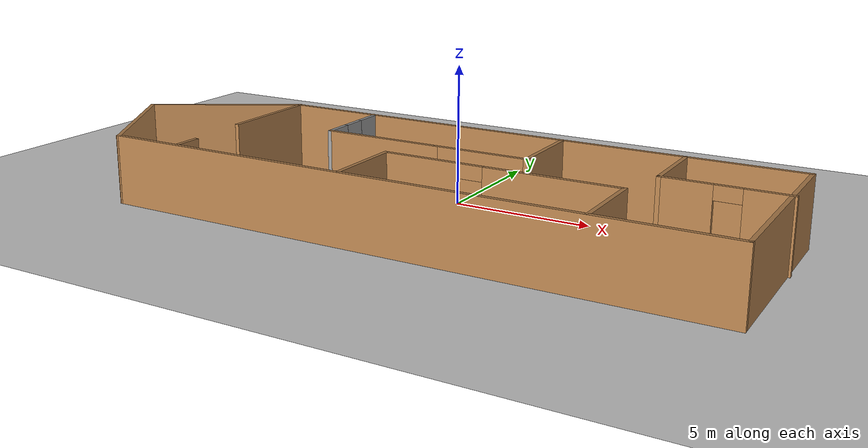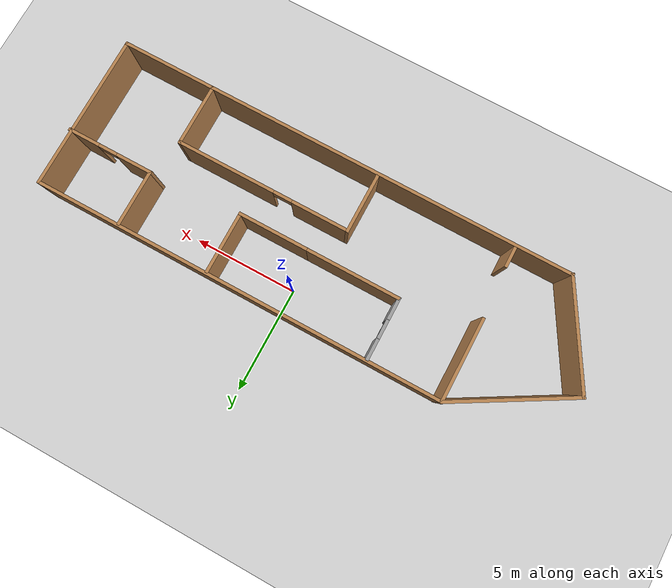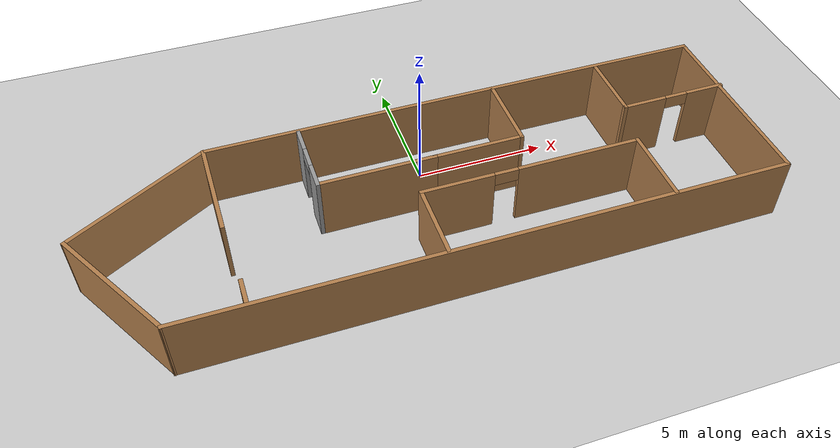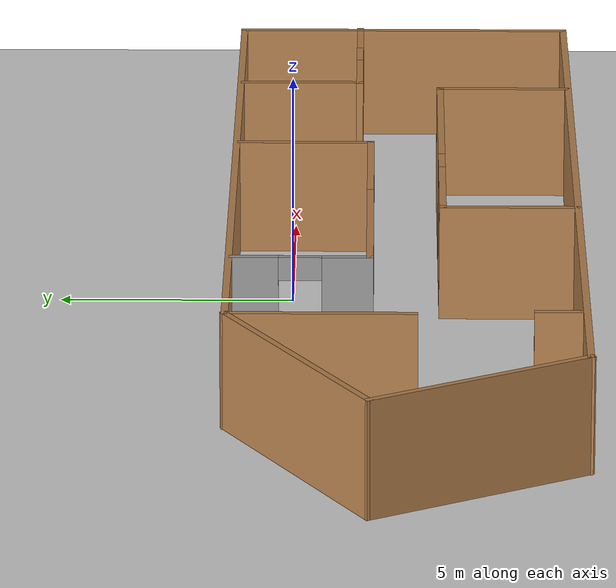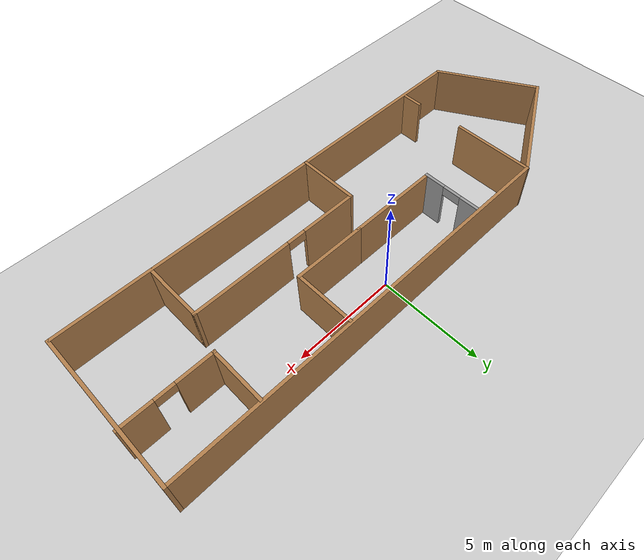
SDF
<sdf version="1.7">
 <world name="default">
  <light name="sun" type="directional">
   <pose>0 0 10 0 -0 0</pose>
   <diffuse>0.8 0.8 0.8 1</diffuse>
   <specular>0.2 0.2 0.2 1</specular>
   <attenuation>
    <range>1000</range>
    <constant>0.9</constant>
    <linear>0.01</linear>
    <quadratic>0.001</quadratic>
   </attenuation>
   <direction>-0.5 0.1 -0.9</direction>
   <spot><inner_angle>0</inner_angle><outer_angle>0</outer_angle><falloff>0</falloff></spot>
  </light>
  <model name="ground_plane">
   <static>1</static>
   <link name="link">
    <collision name="collision">
     <geometry><plane><normal>0 0 1</normal><size>100 100</size></plane></geometry>
     <surface>
      <contact><collide_bitmask>65535</collide_bitmask></contact>
      <friction><ode><mu>100</mu><mu2>50</mu2></ode></friction>
     </surface>
    </collision>
    <visual name="visual">
     <cast_shadows>0</cast_shadows>
     <geometry><plane><normal>0 0 1</normal><size>100 100</size></plane></geometry>
     <material>
      <script><uri>file://media/materials/scripts/gazebo.material</uri><name>Gazebo/Grey</name></script>
     </material>
    </visual>
   </link>
  </model>
  <gravity>0 0 -9.8</gravity>
  <magnetic_field>6e-06 2.3e-05 -4.2e-05</magnetic_field>
  <atmosphere type="adiabatic"/>
  <physics type="ode">
   <max_step_size>0.001</max_step_size>
   <real_time_factor>1</real_time_factor>
   <real_time_update_rate>1000</real_time_update_rate>
  </physics>
  <scene><ambient>0.4 0.4 0.4 1</ambient><background>0.7 0.7 0.7 1</background><shadows>1</shadows></scene>
  <spherical_coordinates>
   <surface_model>EARTH_WGS84</surface_model>
   <latitude_deg>0</latitude_deg>
   <longitude_deg>0</longitude_deg>
   <elevation>0</elevation>
   <heading_deg>0</heading_deg>
  </spherical_coordinates>
  <model name="Untitled">
   <pose>-0.517626 -2.38887 0 0 -0 0</pose>
   <link name="Wall_0">
    <collision name="Wall_0_Collision">
     <geometry><box><size>19.75 0.15 2.5</size></box></geometry>
     <pose>0 0 1.25 0 -0 0</pose>
    </collision>
    <visual name="Wall_0_Visual">
     <pose>0 0 1.25 0 -0 0</pose>
     <geometry><box><size>19.75 0.15 2.5</size></box></geometry>
     <material>
      <script><uri>file://media/materials/scripts/gazebo.material</uri><name>Gazebo/Wood</name></script>
      <ambient>1 1 1 1</ambient>
     </material>
     <meta><layer>0</layer></meta>
    </visual>
    <pose>2.5006 3.67496 0 0 -0 0</pose>
   </link>
   <link name="Wall_1">
    <collision name="Wall_1_Collision">
     <geometry><box><size>7.5 0.15 2.5</size></box></geometry>
     <pose>0 0 1.25 0 -0 0</pose>
    </collision>
    <visual name="Wall_1_Visual">
     <pose>0 0 1.25 0 -0 0</pose>
     <geometry><box><size>7.5 0.15 2.5</size></box></geometry>
     <material>
      <script><uri>file://media/materials/scripts/gazebo.material</uri><name>Gazebo/Wood</name></script>
      <ambient>1 1 1 1</ambient>
     </material>
     <meta><layer>0</layer></meta>
    </visual>
    <pose>12.3006 -3.6e-05 0 0 -0 -1.5708</pose>
   </link>
   <link name="Wall_10">
    <pose>3.66175 -0.803372 0 0 -0 0</pose>
    <visual name="Wall_10_Visual_0">
     <pose>-2.8459 0 1.25 0 -0 0</pose>
     <geometry><box><size>2.80819 0.15 2.5</size></box></geometry>
     <material>
      <script><uri>file://media/materials/scripts/gazebo.material</uri><name>Gazebo/Wood</name></script>
      <ambient>1 1 1 1</ambient>
     </material>
     <meta><layer>0</layer></meta>
    </visual>
    <collision name="Wall_10_Collision_0">
     <geometry><box><size>2.80819 0.15 2.5</size></box></geometry>
     <pose>-2.8459 0 1.25 0 -0 0</pose>
    </collision>
    <visual name="Wall_10_Visual_1">
     <pose>1.8541 0 1.25 0 -0 0</pose>
     <geometry><box><size>4.79181 0.15 2.5</size></box></geometry>
     <material>
      <script><uri>file://media/materials/scripts/gazebo.material</uri><name>Gazebo/Wood</name></script>
      <ambient>1 1 1 1</ambient>
     </material>
     <meta><layer>0</layer></meta>
    </visual>
    <collision name="Wall_10_Collision_1">
     <geometry><box><size>4.79181 0.15 2.5</size></box></geometry>
     <pose>1.8541 0 1.25 0 -0 0</pose>
    </collision>
    <visual name="Wall_10_Visual_2">
     <pose>-0.991809 0 2.25 0 -0 0</pose>
     <geometry><box><size>0.9 0.15 0.5</size></box></geometry>
     <material>
      <script><uri>file://media/materials/scripts/gazebo.material</uri><name>Gazebo/Wood</name></script>
      <ambient>1 1 1 1</ambient>
     </material>
     <meta><layer>0</layer></meta>
    </visual>
    <collision name="Wall_10_Collision_2">
     <geometry><box><size>0.9 0.15 0.5</size></box></geometry>
     <pose>-0.991809 0 2.25 0 -0 0</pose>
    </collision>
   </link>
   <link name="Wall_11">
    <collision name="Wall_11_Collision">
     <geometry><box><size>3 0.15 2.5</size></box></geometry>
     <pose>0 0 1.25 0 -0 0</pose>
    </collision>
    <visual name="Wall_11_Visual">
     <pose>0 0 1.25 0 -0 0</pose>
     <geometry><box><size>3 0.15 2.5</size></box></geometry>
     <material>
      <script><uri>file://media/materials/scripts/gazebo.material</uri><name>Gazebo/Wood</name></script>
      <ambient>1 1 1 1</ambient>
     </material>
     <meta><layer>0</layer></meta>
    </visual>
    <pose>7.83675 -2.22837 0 0 -0 -1.5708</pose>
   </link>
   <link name="Wall_13">
    <pose>10.3269 0.998984 0 0 -0 3.14159</pose>
    <visual name="Wall_13_Visual_0">
     <pose>-1.3418 0 1.25 0 -0 0</pose>
     <geometry><box><size>1.5664 0.15 2.5</size></box></geometry>
     <material>
      <script><uri>file://media/materials/scripts/gazebo.material</uri><name>Gazebo/Wood</name></script>
      <ambient>1 1 1 1</ambient>
     </material>
     <meta><layer>0</layer></meta>
    </visual>
    <collision name="Wall_13_Collision_0">
     <geometry><box><size>1.5664 0.15 2.5</size></box></geometry>
     <pose>-1.3418 0 1.25 0 -0 0</pose>
    </collision>
    <visual name="Wall_13_Visual_1">
     <pose>1.2332 0 1.25 0 -0 0</pose>
     <geometry><box><size>1.7836 0.15 2.5</size></box></geometry>
     <material>
      <script><uri>file://media/materials/scripts/gazebo.material</uri><name>Gazebo/Wood</name></script>
      <ambient>1 1 1 1</ambient>
     </material>
     <meta><layer>0</layer></meta>
    </visual>
    <collision name="Wall_13_Collision_1">
     <geometry><box><size>1.7836 0.15 2.5</size></box></geometry>
     <pose>1.2332 0 1.25 0 -0 0</pose>
    </collision>
    <visual name="Wall_13_Visual_2">
     <pose>-0.108603 0 2.25 0 -0 0</pose>
     <geometry><box><size>0.9 0.15 0.5</size></box></geometry>
     <material>
      <script><uri>file://media/materials/scripts/gazebo.material</uri><name>Gazebo/Wood</name></script>
      <ambient>1 1 1 1</ambient>
     </material>
     <meta><layer>0</layer></meta>
    </visual>
    <collision name="Wall_13_Collision_2">
     <geometry><box><size>0.9 0.15 0.5</size></box></geometry>
     <pose>-0.108603 0 2.25 0 -0 0</pose>
    </collision>
   </link>
   <link name="Wall_14">
    <collision name="Wall_14_Collision">
     <geometry><box><size>2.75 0.15 2.5</size></box></geometry>
     <pose>0 0 1.25 0 -0 0</pose>
    </collision>
    <visual name="Wall_14_Visual">
     <pose>0 0 1.25 0 -0 0</pose>
     <geometry><box><size>2.75 0.15 2.5</size></box></geometry>
     <material>
      <script><uri>file://media/materials/scripts/gazebo.material</uri><name>Gazebo/Wood</name></script>
      <ambient>1 1 1 1</ambient>
     </material>
     <meta><layer>0</layer></meta>
    </visual>
    <pose>8.27692 2.29898 0 0 -0 1.5708</pose>
   </link>
   <link name="Wall_16">
    <pose>-3.80139 2.16251 0 0 -0 -1.5708</pose>
    <visual name="Wall_16_Visual_0">
     <pose>-0.987897 0 1.25 0 -0 0</pose>
     <geometry><box><size>1.02421 0.15 2.5</size></box></geometry>
     <material>
      <script><uri>file://media/materials/scripts/gazebo.material</uri><name>Gazebo/Grey</name></script>
      <ambient>1 1 1 1</ambient>
     </material>
     <meta><layer>0</layer></meta>
    </visual>
    <collision name="Wall_16_Collision_0">
     <geometry><box><size>1.02421 0.15 2.5</size></box></geometry>
     <pose>-0.987897 0 1.25 0 -0 0</pose>
    </collision>
    <visual name="Wall_16_Visual_1">
     <pose>0.962103 0 1.25 0 -0 0</pose>
     <geometry><box><size>1.0758 0.15 2.5</size></box></geometry>
     <material>
      <script><uri>file://media/materials/scripts/gazebo.material</uri><name>Gazebo/Grey</name></script>
      <ambient>1 1 1 1</ambient>
     </material>
     <meta><layer>0</layer></meta>
    </visual>
    <collision name="Wall_16_Collision_1">
     <geometry><box><size>1.0758 0.15 2.5</size></box></geometry>
     <pose>0.962103 0 1.25 0 -0 0</pose>
    </collision>
    <visual name="Wall_16_Visual_2">
     <pose>-0.025795 0 2.25 0 -0 0</pose>
     <geometry><box><size>0.9 0.15 0.5</size></box></geometry>
     <material>
      <script><uri>file://media/materials/scripts/gazebo.material</uri><name>Gazebo/Grey</name></script>
      <ambient>1 1 1 1</ambient>
     </material>
     <meta><layer>0</layer></meta>
    </visual>
    <collision name="Wall_16_Collision_2">
     <geometry><box><size>0.9 0.15 0.5</size></box></geometry>
     <pose>-0.025795 0 2.25 0 -0 0</pose>
    </collision>
   </link>
   <link name="Wall_17">
    <collision name="Wall_17_Collision">
     <geometry><box><size>4.5 0.15 2.5</size></box></geometry>
     <pose>0 0 1.25 0 -0 0</pose>
    </collision>
    <visual name="Wall_17_Visual">
     <pose>0 0 1.25 0 -0 0</pose>
     <geometry><box><size>4.5 0.15 2.5</size></box></geometry>
     <material>
      <script><uri>file://media/materials/scripts/gazebo.material</uri><name>Gazebo/Wood</name></script>
      <ambient>1 1 1 1</ambient>
     </material>
     <meta><layer>0</layer></meta>
    </visual>
    <pose>-1.62639 0.737514 0 0 -0 0</pose>
   </link>
   <link name="Wall_2">
    <collision name="Wall_2_Collision">
     <geometry><box><size>22.25 0.15 2.5</size></box></geometry>
     <pose>0 0 1.25 0 -0 0</pose>
    </collision>
    <visual name="Wall_2_Visual">
     <pose>0 0 1.25 0 -0 0</pose>
     <geometry><box><size>22.25 0.15 2.5</size></box></geometry>
     <material>
      <script><uri>file://media/materials/scripts/gazebo.material</uri><name>Gazebo/Wood</name></script>
      <ambient>1 1 1 1</ambient>
     </material>
     <meta><layer>0</layer></meta>
    </visual>
    <pose>1.2506 -3.67504 0 0 -0 3.14159</pose>
   </link>
   <link name="Wall_20">
    <collision name="Wall_20_Collision">
     <geometry><box><size>3.5 0.15 2.5</size></box></geometry>
     <pose>0 0 1.25 0 -0 0</pose>
    </collision>
    <visual name="Wall_20_Visual">
     <pose>0 0 1.25 0 -0 0</pose>
     <geometry><box><size>3.5 0.15 2.5</size></box></geometry>
     <material>
      <script><uri>file://media/materials/scripts/gazebo.material</uri><name>Gazebo/Wood</name></script>
      <ambient>1 1 1 1</ambient>
     </material>
     <meta><layer>0</layer></meta>
    </visual>
    <pose>2.22361 0.737514 0 0 -0 0</pose>
   </link>
   <link name="Wall_21">
    <collision name="Wall_21_Collision">
     <geometry><box><size>3 0.15 2.5</size></box></geometry>
     <pose>0 0 1.25 0 -0 0</pose>
    </collision>
    <visual name="Wall_21_Visual">
     <pose>0 0 1.25 0 -0 0</pose>
     <geometry><box><size>3 0.15 2.5</size></box></geometry>
     <material>
      <script><uri>file://media/materials/scripts/gazebo.material</uri><name>Gazebo/Wood</name></script>
      <ambient>1 1 1 1</ambient>
     </material>
     <meta><layer>0</layer></meta>
    </visual>
    <pose>3.89861 2.16251 0 0 -0 1.5708</pose>
   </link>
   <link name="Wall_3">
    <collision name="Wall_3_Collision">
     <geometry><box><size>5.25 0.15 2.5</size></box></geometry>
     <pose>0 0 1.25 0 -0 0</pose>
    </collision>
    <visual name="Wall_3_Visual">
     <pose>0 0 1.25 0 -0 0</pose>
     <geometry><box><size>5.25 0.15 2.5</size></box></geometry>
     <material>
      <script><uri>file://media/materials/scripts/gazebo.material</uri><name>Gazebo/Wood</name></script>
      <ambient>1 1 1 1</ambient>
     </material>
     <meta><layer>0</layer></meta>
    </visual>
    <pose>-11.0744 -1.46667 0 0 -0 2.0944</pose>
   </link>
   <link name="Wall_4">
    <collision name="Wall_4_Collision">
     <geometry><box><size>5.99008 0.15 2.5</size></box></geometry>
     <pose>0 0 1.25 0 -0 0</pose>
    </collision>
    <visual name="Wall_4_Visual">
     <pose>0 0 1.25 0 -0 0</pose>
     <geometry><box><size>5.99008 0.15 2.5</size></box></geometry>
     <material>
      <script><uri>file://media/materials/scripts/gazebo.material</uri><name>Gazebo/Wood</name></script>
      <ambient>1 1 1 1</ambient>
     </material>
     <meta><layer>0</layer></meta>
    </visual>
    <pose>-9.8244 2.20833 0 0 -0 0.526216</pose>
   </link>
   <link name="Wall_5">
    <collision name="Wall_5_Collision">
     <geometry><box><size>4 0.15 2.5</size></box></geometry>
     <pose>0 0 1.25 0 -0 0</pose>
    </collision>
    <visual name="Wall_5_Visual">
     <pose>0 0 1.25 0 -0 0</pose>
     <geometry><box><size>4 0.15 2.5</size></box></geometry>
     <material>
      <script><uri>file://media/materials/scripts/gazebo.material</uri><name>Gazebo/Wood</name></script>
      <ambient>1 1 1 1</ambient>
     </material>
     <meta><layer>0</layer></meta>
    </visual>
    <pose>-7.2994 1.74996 0 0 -0 -1.5708</pose>
   </link>
   <link name="Wall_7">
    <collision name="Wall_7_Collision">
     <geometry><box><size>1 0.15 2.5</size></box></geometry>
     <pose>0 0 1.25 0 -0 0</pose>
    </collision>
    <visual name="Wall_7_Visual">
     <pose>0 0 1.25 0 -0 0</pose>
     <geometry><box><size>1 0.15 2.5</size></box></geometry>
     <material>
      <script><uri>file://media/materials/scripts/gazebo.material</uri><name>Gazebo/Wood</name></script>
      <ambient>1 1 1 1</ambient>
     </material>
     <meta><layer>0</layer></meta>
    </visual>
    <pose>-7.15948 -3.10594 0 0 -0 1.5708</pose>
   </link>
   <link name="Wall_9">
    <collision name="Wall_9_Collision">
     <geometry><box><size>3 0.15 2.5</size></box></geometry>
     <pose>0 0 1.25 0 -0 0</pose>
    </collision>
    <visual name="Wall_9_Visual">
     <pose>0 0 1.25 0 -0 0</pose>
     <geometry><box><size>3 0.15 2.5</size></box></geometry>
     <material>
      <script><uri>file://media/materials/scripts/gazebo.material</uri><name>Gazebo/Wood</name></script>
      <ambient>1 1 1 1</ambient>
     </material>
     <meta><layer>0</layer></meta>
    </visual>
    <pose>-0.513254 -2.22837 0 0 -0 1.5708</pose>
   </link>
   <static>1</static>
  </model>
 </world>
</sdf>
